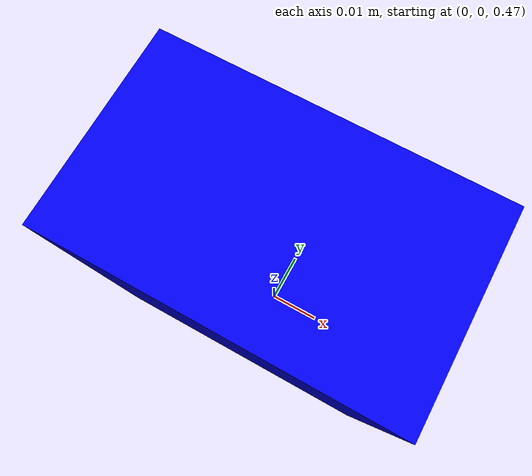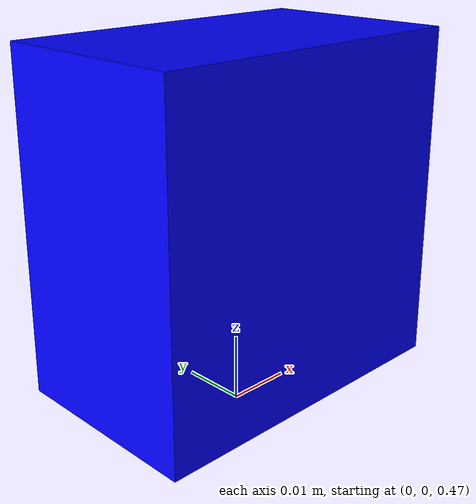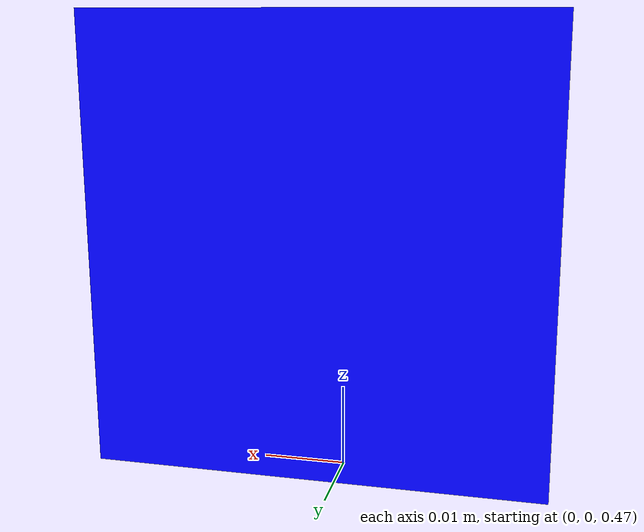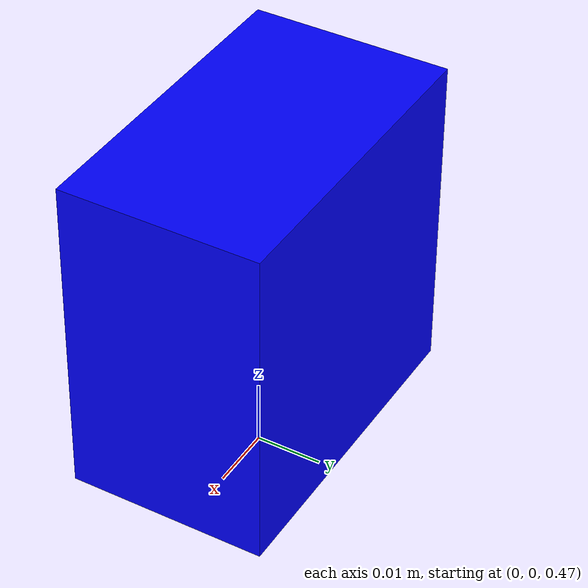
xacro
<?xml version="1.0"?>
<robot xmlns:xacro="http://www.ros.org/wiki/xacro">

  <!-- Properties -->
  <xacro:property name="camera_width" value="0.05"/>
  <xacro:property name="camera_height" value="0.03"/>
  <xacro:property name="camera_depth" value="0.05"/>

    <!-- World Link Definition -->
    <link name="world"/>

    <!-- Base Link Definition -->
    <link name="base_link">
        <inertial>
            <origin xyz="0 0 0" rpy="0 0 0"/>
            <mass value="0.001"/>
            <inertia ixx="1.0e-6" ixy="0" ixz="0" iyy="1.0e-6" iyz="0" izz="1.0e-6"/>
        </inertial>
    </link>

    <!-- Joint connecting World to Base Link -->
    <joint name="joint_w" type="fixed">
        <parent link="world"/>
        <child link="base_link"/>
        <origin xyz="0 0 0"/>
    </joint>

  <link name="camera_link">

    <visual>
      <geometry>
        <box size="${camera_width} ${camera_height} ${camera_depth}"/>
      </geometry>
      <material name="blue">
        <color rgba="0 0 1 1.0"/>
      </material>
    </visual>

    <collision>
      <geometry>
        <box size="${camera_width} ${camera_height} ${camera_depth}"/>
      </geometry>
    </collision>

    <inertial>

      <mass value="0.1"/>
      <inertia ixx="0.0001" ixy="0" ixz="0" iyy="0.0001" iyz="0" izz="0.0001"/>
    </inertial>
  </link>

 <joint name="base_to_camera_joint" type="fixed">
    <parent link="base_link"/>
    <child link="camera_link"/>
    <origin xyz="0 0 0.5" rpy="0 0 0"/> <!-- This positions the camera 1 unit higher relative to the base_link -->
 </joint>
  <!-- Camera Link -->
  <!-- Camera Plugin -->
  <gazebo reference="camera_link">
    <sensor type="camera" name="camera_sensor">
      <update_rate>30.0</update_rate>
      <camera>
        <horizontal_fov>1.3962634</horizontal_fov>
        <image>
          <width>640</width>
          <height>480</height>
        </image>
        <clip>
          <near>0.01</near>
          <far>100</far>
        </clip>
      </camera>
      <plugin name="camera_controller" filename="libgazebo_ros_camera.so">
        <alwaysOn>true</alwaysOn>
        <updateRate>0.0</updateRate>
        <cameraName>robot/camera</cameraName>
        <imageTopicName>image_raw</imageTopicName>
        <cameraInfoTopicName>camera_info</cameraInfoTopicName>
        <frameName>camera_link</frameName>
      </plugin>
      <visualize>1</visualize>
    </sensor>
  </gazebo>

</robot>
